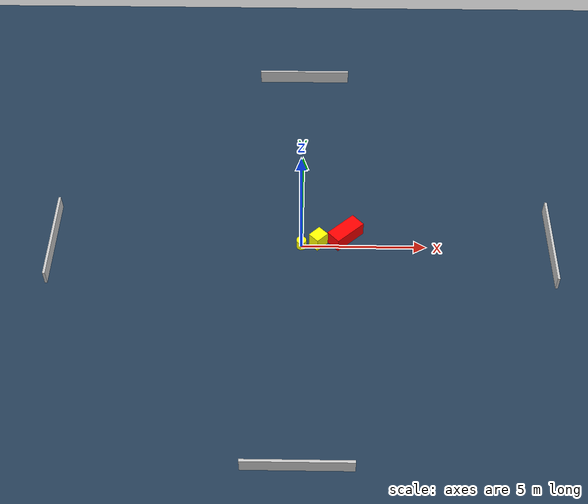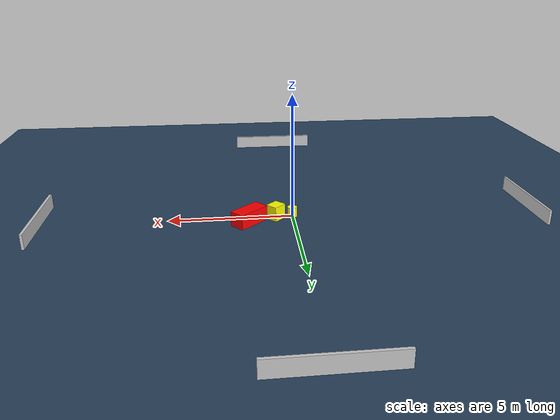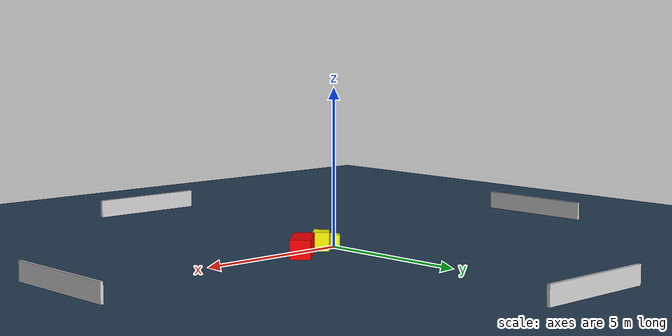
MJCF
<?xml version="1.0" ?>
<mujoco model="generated_environment">
  <option timestep="0.01" integrator="RK4" cone="elliptic"/>
  <default>
    <geom density="1"/>
  </default>
  <asset>
    <texture builtin="gradient" height="3072" name="skybox" rgb1="0.3 0.5 0.7" rgb2="0 0 0" type="skybox" width="512"/>
    <texture builtin="checker" height="300" name="groundplane" rgb1="0.2 0.3 0.4" rgb2="0.1 0.2 0.3" type="2d" width="300"/>
    <material name="groundplane" reflectance="0.2" texrepeat="5 5" texture="groundplane"/>
  </asset>
  <worldbody>
    <light dir="0 0 -1" directional="true" pos="0 0 1.5"/>
    <geom condim="3" friction="0.5 0.005 0.001" material="groundplane" name="floor" pos="0 0 0" size="0 0 0.05" type="plane"/>
    <body name="walls">
      <geom name="wall_1" condim="4" pos="-10.0 0.0 0.3" rgba="0.800000011920929 0.800000011920929 0.800000011920929 1.0" size="0.05 2.0 0.3" type="box"/>
      <geom name="wall_2" condim="4" pos="10.0 0.0 0.3" rgba="0.800000011920929 0.800000011920929 0.800000011920929 1.0" size="0.05 2.0 0.3" type="box"/>
      <geom name="wall_3" condim="4" pos="0.0 -10.0 0.3" rgba="0.800000011920929 0.800000011920929 0.800000011920929 1.0" size="2.0 0.05 0.3" type="box"/>
      <geom name="wall_4" condim="4" pos="0.0 10.0 0.3" rgba="0.800000011920929 0.800000011920929 0.800000011920929 1.0" size="2.0 0.05 0.3" type="box"/>
    </body>
    <body name="robot">
      <joint name="joint_x" type="slide" pos="0 0 0" axis="1 0 0"/>
      <joint name="joint_y" type="slide" pos="0 0 0" axis="0 1 0"/>
      <geom name="robot" type="cylinder" pos="0.0 0.0 0.2" size="0.2 0.2 0.0" mass="5.0" friction="1.0 0.005 0.0001" condim="4" rgba="1.0 1.0 0.0 1.0"/>
    </body>
    <body name="obstacle_1_movable">
      <geom name="obstacle_1_movable" condim="4" pos="0.6809263501185299 0.15098702458478738 0.3" euler="0 0 134.2455696927226" friction="0.0 0.005 0.001" rgba="1.0 1.0 0.0 1.0" size="0.24875801880212117 0.2917365299756753 0.3" type="box" mass="0.1"/>
      <joint type="free"/>
    </body>
    <body name="obstacle_2_static">
      <geom name="obstacle_2_static" condim="4" pos="1.772219880442884 0.4796065315917044 0.3" euler="0 0 222.5967040159352" friction="0.0 0.005 0.001" rgba="1.0 0.0 0.0 1.0" size="0.6955359721217681 0.31928251418821807 0.3" type="box"/>
    </body>
  </worldbody>
  <actuator>
    <motor name="actuator_x" joint="joint_x" gear="1" ctrlrange="-1 1"/>
    <motor name="actuator_y" joint="joint_y" gear="1" ctrlrange="-1 1"/>
  </actuator>
</mujoco>
